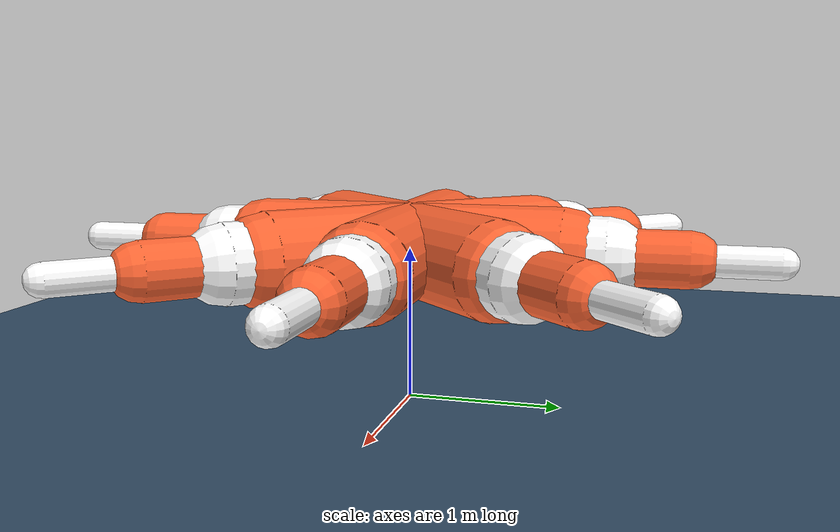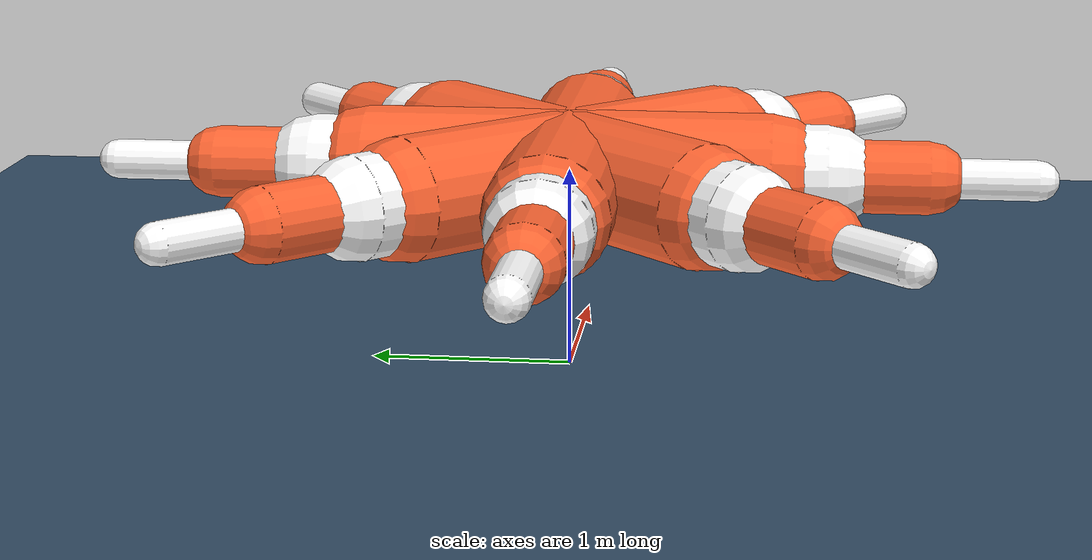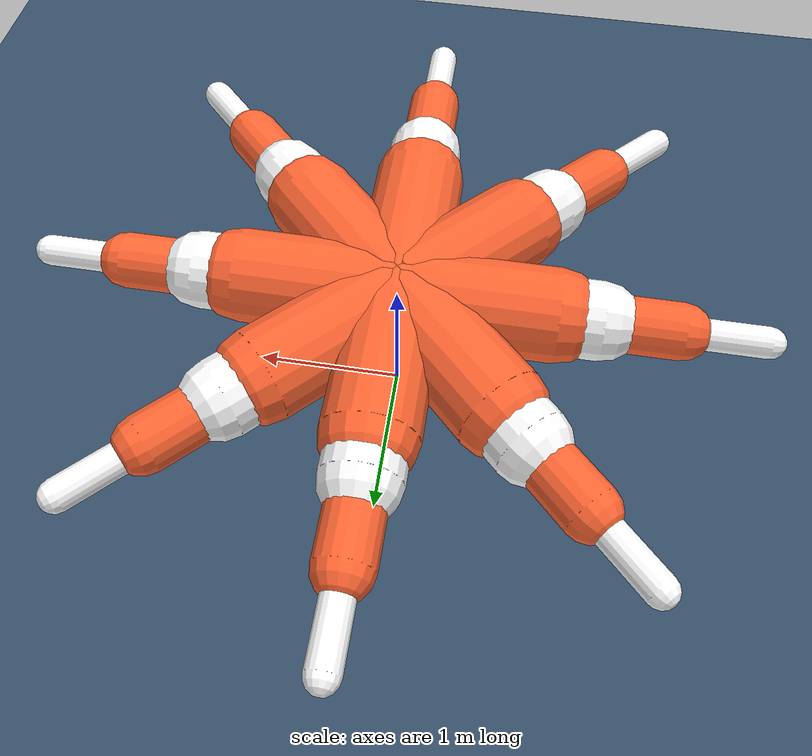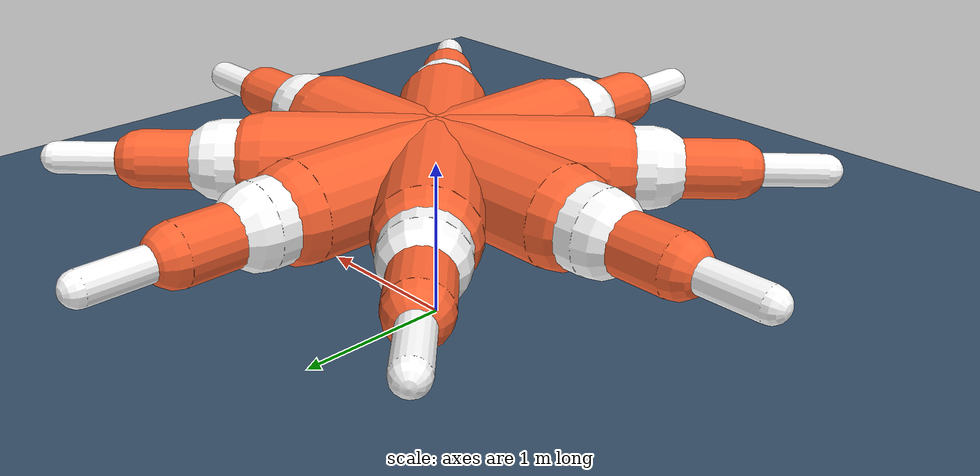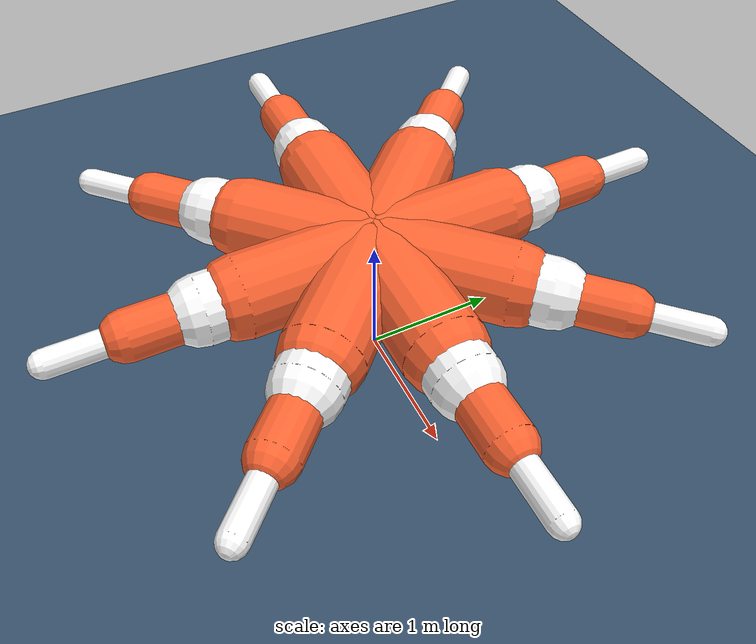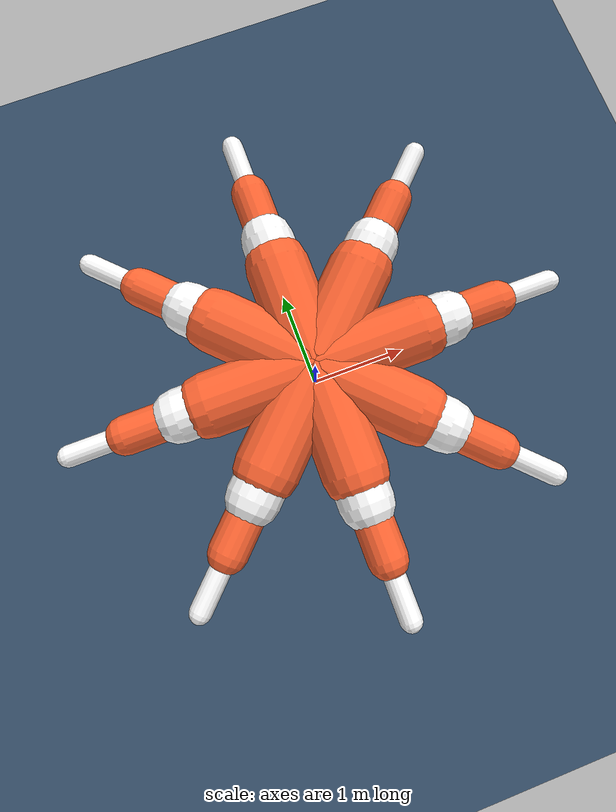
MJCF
<mujoco>
    <compiler inertiafromgeom="true" angle="degree"/>

    <default>
        <joint limited="true" damping="1" armature="0"/>
        <geom condim="1"/>
        <position ctrlrange="-.4 .4" ctrllimited="true"/>
    </default>

    <option timestep="0.005" iterations="50" tolerance="1e-10" solver="Newton" jacobian="dense" cone="pyramidal"/>
    <size nconmax="50" njmax="200" nstack="10000"/>

    <visual>
        <map force="0.1" zfar="30"/>
        <quality shadowsize="2048"/>
    </visual>

    <asset>
        <texture type="skybox" builtin="gradient" rgb1="0.3 0.5 0.7" rgb2="0.6 0.6 0.9" width="512" height="512"/>
        <texture name="texture_floor" type="2d" builtin="flat" rgb1=".2 .3 .4" rgb2=".2 .3 .4" width="512" height="512" mark="cross" markrgb=".8 .8 .8"/>
        <material name="material_floor" reflectance="0" texture="texture_floor" shininess="1" specular="1" texrepeat="1 1" texuniform="true"/>

        <texture name="texture1" type="cube" builtin="flat" mark="none" width="127" height="1278" rgb1="1 0.4 0.2" rgb2="1 0.4 0.2" markrgb="1 1 1" />
        <texture name="texture2" type="cube" builtin="flat" mark="none" width="127" height="1278" rgb1="1 1 1" rgb2="1 1 1" markrgb="1 1 1"/>
        <texture name="texture3" type="cube" builtin="flat" mark="none" width="127" height="1278" rgb1="1 0.4 0.2" rgb2="1 0.4 0.2" markrgb="1 1 1"/>
        <texture name="texture4" type="cube" builtin="flat" mark="none" width="127" height="1278" rgb1="1 1 1" rgb2="1 1 1" markrgb="1 1 1"/>

        <material name="material1" texture="texture1" texuniform="true" rgba="1 1 1 1" specular="0.1"/>
        <material name="material2" texture="texture2" texuniform="true" rgba="1 1 1 1" specular="0.1"/>
        <material name="material3" texture="texture3" texuniform="true" rgba="1 1 1 1" specular="0.1"/>
        <material name="material4" texture="texture4" texuniform="true" rgba="1 1 1 1" specular="0.1"/>
    </asset>

    <worldbody>
        <geom name="floor" friction="1 1 1" pos="0 0 0" size="0 0 .25" type="plane" material="material_floor" condim="3"/>

        <light mode="trackcom" target="spider" cutoff="100" diffuse="1 1 1" dir="-0 0 -1.3" directional="true" exponent="1" pos="0 0 1.3" specular=".1 .1 .1"/>
        <camera name="track1" mode="trackcom" target="spider" pos="0 -6 6" euler="45 0 0"/>
        <camera name="track2" mode="trackcom" target="spider" pos="0 -6 3" euler="70 0 0"/>
        <camera name="track3" mode="trackcom" target="spider" pos="6 -6 3" xyaxes="1 1 0 -0.3 0 1"/>
        <camera name="track4" mode="trackcom" target="spider" pos="6 0 3" xyaxes="0 1 0 -0.3 0 1"/>
        <camera name="track5" mode="trackcom" target="spider" pos="6 0 6" xyaxes="0 1 0 -0.8 0 1"/>
        <camera name="track6" mode="targetbody" target="spider" pos="30 -10 1"/>
        <body name="spider" pos="0 0 1">
            <freejoint name="root"/>
            <geom mass="3500" type="capsule" fromto="-.7071 .7071 0 .7071 -.7071 0"  size="0.3 0.3" material="material1"/>
            <geom mass="3500" type="capsule" fromto=".7071 .7071 0 -.7071 -.7071 0"  size="0.3 0.3" material="material1"/>
            <geom mass="3500" type="capsule" fromto="0 1 0 0 -1 0"  size="0.3 0.3" material="material1"/>
            <geom mass="3500" type="capsule" fromto="1 0 0 -1 0 0"  size="0.3 0.3" material="material1"/>

            <body name="leg1" pos="1 0 0">
                <joint name="1"  type="hinge" pos="0 0 0" damping="900" axis="0 0 1" range="-90 90"   />
                <geom type="capsule" material="material2" fromto="0 0 0 0.27 0 0"  size="0.25 0.25" />
                <body pos="0.27 0 0">
                    <joint name="9" type="hinge" pos="0 0 0" damping="900" axis="0 -1 0" range="-90 0"    />
                    <geom friction="000 000 000" type="capsule" material="material3" fromto="0 0 0 0.49 0 0"  size="0.18 0.18" />
                    <body pos="0.49 0 0">
                        <joint name="17" type="hinge" pos="0 0 0" damping="900" axis="0 -1 0" range="-90 0"    />
                        <geom friction="000 0390 000"  type="capsule" material="material4" fromto="0 0 0 0.52 0 0"  size=".1 .1" />
                    </body>

                </body>
            </body>

            <body name="leg5" pos="-1 0 0">
                <joint name="5" type="hinge" pos="0 0 0" axis="0 0 1" damping="900" range="-90 90"   />
                <geom type="capsule" material="material2" fromto="0 0 0 -.27 0 0"  size="0.25 0.25" />
                <body pos="-.27 0 0">
                    <joint name="13" type="hinge" pos="0 0 0" axis="0 1 0" damping="900" range="-90 0"   />
                    <geom friction="000 000 000" type="capsule" material="material3" fromto="0 0 0 -.49 0 0"  size="0.18 0.18" />
                    <body pos="-.49 0 0">
                        <joint name="21" type="hinge" pos="0 0 0" axis="0 1 0" damping="900" range="-90 0"   />
                        <geom friction="000 0390 000" type="capsule" material="material4" fromto="0 0 0 -.52 0 0"  size=".1 .1" />
                    </body>

                </body>
            </body>

            <body name="leg2" pos="0.7071 0.7071 0">
                <joint name="2" type="hinge" pos="0 0 0" axis="0 0 1" damping="900" range="-90 90"   />
                <geom type="capsule" material="material2" fromto="0 0 0 0.1909 0.1909 0"  size="0.25 0.25" />
                <body pos=".1909 .1909 0">
                    <joint name="10" type="hinge" pos="0 0 0" axis=".5 -.5 0" damping="900" range="-90 0"   />
                    <geom friction="000 000 000" type="capsule" material="material3" fromto="0 0 0 .3465 .3465 0"  size="0.18 0.18" />
                    <body pos=".3465 .3465 0">
                        <joint name="18" type="hinge" pos="0 0 0" axis=".5 -.5 0" damping="900" range="-90 0"   />
                        <geom friction="000 0390 000" type="capsule" material="material4" fromto="0 0 0 .3677 .3677 0"  size=".1 .1" />
                    </body>

                </body>
            </body>

            <body name="leg6" pos="-0.7071 -0.7071 0">
                <joint name="6" type="hinge" pos="0 0 0" axis="0 0 1" range="-90 90" damping="900" />
                <geom type="capsule" material="material2" fromto="0 0 0 -0.1909 -0.1909 0"  size="0.25 0.25" />
                <body pos="-.1909 -.1909 0">
                    <joint name="14" type="hinge" pos="0 0 0" axis="-.5 .65 0"  damping="900" range="-90 0"   />
                    <geom friction="000 000 000" type="capsule" material="material3" fromto="0 0 0 -.3465 -.3465 0"  size="0.18 0.18" />
                    <body pos="-.3465 -.3465 0">
                        <joint name="22" type="hinge" pos="0 0 0" axis="-.5 .65 0" damping="900" range="-90 0"   />
                        <geom friction="000 0390 000" type="capsule" material="material4" fromto="0 0 0 -.3677 -.3677 0"  size=".1 .1" />
                    </body>

                </body>
            </body>

            <body name="leg3" pos="0 1 0">
                <joint name="3"  type="hinge" pos="0 0 0" damping="900" axis="0 0 1" range="-90 90"   />
                <geom type="capsule" material="material2" fromto="0 0 0 0 0.27 0"  size="0.25 0.25" />
                <body pos="0 0.27 0">
                    <joint name="11" type="hinge" pos="0 0 0" damping="900" axis="1 0 0" range="-90 0"    />
                    <geom friction="000 000 000" type="capsule" material="material3" fromto="0 0 0 0 0.49 0"  size="0.18 0.18" />
                    <body pos="0 0.49 0">
                        <joint name="19" type="hinge" pos="0 0 0" damping="900" axis="1 0 0" range="-90 0"    />
                        <geom friction="000 0390 000"  type="capsule" material="material4" fromto="0 0 0 0 0.52 0"  size=".1 .1" />
                    </body>

                </body>
            </body>

            <body name="leg7" pos="0 -1 0">
                <joint name="7" type="hinge" pos="0 0 0" axis="0 0 1" damping="900" range="-90 90"   />
                <geom type="capsule" material="material2" fromto="0 0 0 0 -.27 0"  size="0.25 0.25" />
                <body pos="0 -.27 0">
                    <joint name="15" type="hinge" pos="0 0 0" axis="-1 0 0" damping="900" range="-90 0"   />
                    <geom friction="000 000 000" type="capsule" material="material3" fromto="0 0 0 0 -.49 0"  size="0.18 0.18" />
                    <body pos="0 -.49 0">
                        <joint name="23" type="hinge" pos="0 0 0" axis="-1 0 0" damping="900" range="-90 0"   />
                        <geom friction="000 0390 000" type="capsule" material="material4" fromto="0 0 0 0 -.52 0"  size=".1 .1" />
                    </body>

                </body>
            </body>

            <body name="leg4" pos="-.7071 .7071 0">
                <joint name="4" type="hinge" pos="0 0 0" axis="0 0 1" damping="900" range="-90 90"   />
                <geom type="capsule" material="material2" fromto="0 0 0 -0.1909 0.1909 0"  size="0.25 0.25" />
                <body pos="-.1909 .1909 0">
                    <joint name="12" type="hinge" pos="0 0 0" axis=".5 .65 0" damping="900" range="-90 0"   />
                    <geom friction="000 000 000" type="capsule" material="material3" fromto="0 0 0 -.3465 .3465 0"  size="0.18 0.18" />
                    <body pos="-.3465 .3465 0">
                        <joint name="20" type="hinge" pos="0 0 0" axis=".5 .65 0" damping="900" range="-90 0"   />
                        <geom friction="000 0390 000" type="capsule" material="material4" fromto="0 0 0 -.3677 .3677 0"  size=".1 .1" />
                    </body>

                </body>
            </body>

            <body name="leg8" pos="0.7071 -0.7071 0">
                <joint name="8" type="hinge" pos="0 0 0" axis="0 0 1" damping="900" range="-90 90"   />
                <geom type="capsule" material="material2" fromto="0 0 0 0.1909 -0.1909 0"  size="0.25 0.25" />
                <body pos=".1909 -.1909 0">
                    <joint name="16" type="hinge" pos="0 0 0" axis="-.5 -.65 0" damping="900" range="-90 0"   />
                    <geom friction="000 000 000" type="capsule" material="material3" fromto="0 0 0 .3465 -.3465 0"  size="0.18 0.18" />
                    <body pos=".3465 -.3465 0">
                        <joint name="24" type="hinge" pos="0 0 0" axis="-.5 -.65 0" damping="900" range="-90 0"   />
                        <geom friction="000 0390 000" type="capsule" material="material4" fromto="0 0 0 .3677 -.3677 0"  size=".1 .1" />
                    </body>

                </body>
            </body>
        </body>

    </worldbody>

    <actuator>
        <position ctrllimited="true" ctrlrange="-90 90" gear="55" kp="5" name="g1" joint="1"/>
        <position ctrllimited="true" ctrlrange="-90 90" gear="55" kp="5" name="g2" joint="2" />
        <position ctrllimited="true" ctrlrange="-90 90" gear="55" kp="5" name="g3" joint="3" />
        <position ctrllimited="true" ctrlrange="-90 90" gear="55" kp="5" name="g4" joint="4" />
        <position ctrllimited="true" ctrlrange="-90 90" gear="55" kp="5" name="g5" joint="5" />
        <position ctrllimited="true" ctrlrange="-90 90" gear="55" kp="5" name="g6" joint="6" />
        <position ctrllimited="true" ctrlrange="-90 90" gear="55" kp="5" name="g7" joint="7" />
        <position ctrllimited="true" ctrlrange="-90 90" gear="55" kp="5" name="g8" joint="8" />

        <position ctrllimited="true" ctrlrange="-90 0" gear="55" kp="5" name="g_g1" joint="9" />
        <position ctrllimited="true" ctrlrange="-90 0" gear="55" kp="5" name="g_g2" joint="10" />
        <position ctrllimited="true" ctrlrange="-90 0" gear="55" kp="5" name="g_g3" joint="11" />
        <position ctrllimited="true" ctrlrange="-90 0" gear="55" kp="5" name="g_g4" joint="12" />
        <position ctrllimited="true" ctrlrange="-90 0" gear="55" kp="5" name="g_g5" joint="13" />
        <position ctrllimited="true" ctrlrange="-90 0" gear="55" kp="5" name="g_g6" joint="14" />
        <position ctrllimited="true" ctrlrange="-90 0" gear="55" kp="5" name="g_g7" joint="15" />
        <position ctrllimited="true" ctrlrange="-90 0" gear="55" kp="5" name="g_g8" joint="16" />

        <position ctrllimited="true" ctrlrange="-90 0" gear="55" kp="5" name="g_g_g1" joint="17" />
        <position ctrllimited="true" ctrlrange="-90 0" gear="55" kp="5" name="g_g_g2" joint="18" />
        <position ctrllimited="true" ctrlrange="-90 0" gear="55" kp="5" name="g_g_g3" joint="19" />
        <position ctrllimited="true" ctrlrange="-90 0" gear="55" kp="5" name="g_g_g4" joint="20" />
        <position ctrllimited="true" ctrlrange="-90 0" gear="55" kp="5" name="g_g_g5" joint="21" />
        <position ctrllimited="true" ctrlrange="-90 0" gear="55" kp="5" name="g_g_g6" joint="22" />
        <position ctrllimited="true" ctrlrange="-90 0" gear="55" kp="5" name="g_g_g7" joint="23" />
        <position ctrllimited="true" ctrlrange="-90 0" gear="55" kp="5" name="g_g_g8" joint="24" />
    </actuator>
</mujoco>
